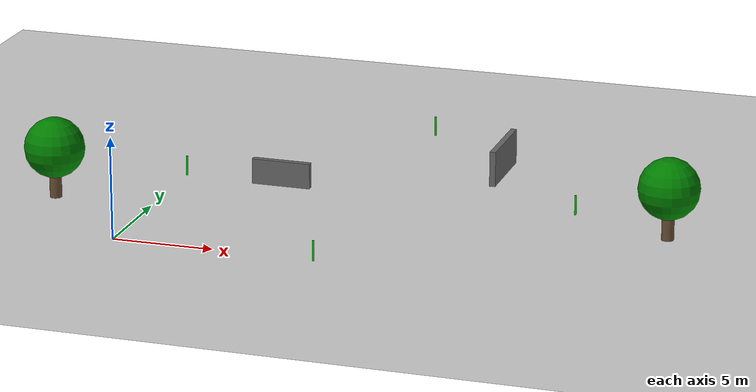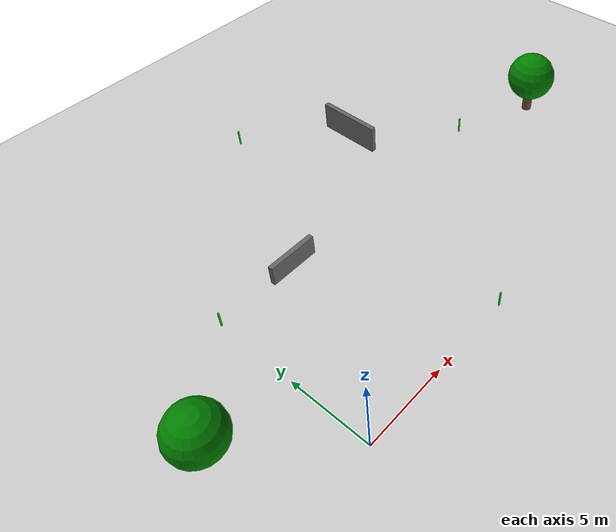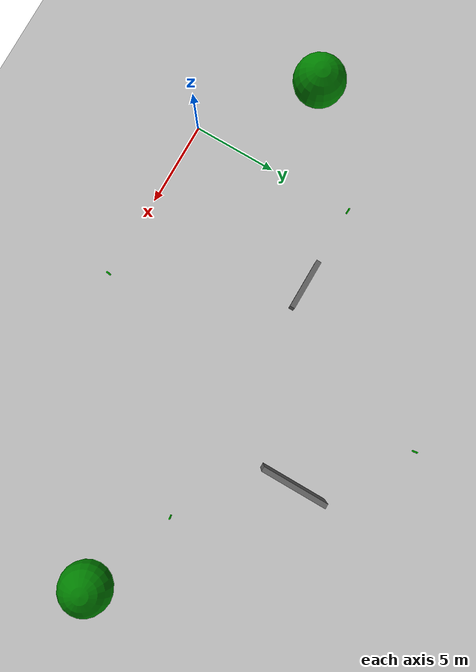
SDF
<sdf version="1.7">
 <world name="perimeter_mining_ground">
  <physics type="ode">
   <max_step_size>0.001</max_step_size>
   <real_time_factor>1.0</real_time_factor>
   <real_time_update_rate>1000.0</real_time_update_rate>
  </physics>
  <include><uri>model://sun</uri></include>
  <include><uri>model://ground_plane</uri></include>
  <model name="perimeter_marker_1">
   <static>1</static>
   <pose>10 0 0.5 0 0 0</pose>
   <link name="link">
    <collision name="collision">
     <geometry><cylinder><radius>0.05</radius><length>1.0</length></cylinder></geometry>
    </collision>
    <visual name="visual">
     <geometry><cylinder><radius>0.05</radius><length>1.0</length></cylinder></geometry>
     <material><ambient>0 0.8 0 1.0</ambient><diffuse>0 0.8 0 1.0</diffuse></material>
    </visual>
   </link>
  </model>
  <model name="perimeter_marker_2">
   <static>1</static>
   <pose>20 10 0.5 0 0 0</pose>
   <link name="link">
    <collision name="collision">
     <geometry><cylinder><radius>0.05</radius><length>1.0</length></cylinder></geometry>
    </collision>
    <visual name="visual">
     <geometry><cylinder><radius>0.05</radius><length>1.0</length></cylinder></geometry>
     <material><ambient>0 0.8 0 1.0</ambient><diffuse>0 0.8 0 1.0</diffuse></material>
    </visual>
   </link>
  </model>
  <model name="perimeter_marker_3">
   <static>1</static>
   <pose>10 20 0.5 0 0 0</pose>
   <link name="link">
    <collision name="collision">
     <geometry><cylinder><radius>0.05</radius><length>1.0</length></cylinder></geometry>
    </collision>
    <visual name="visual">
     <geometry><cylinder><radius>0.05</radius><length>1.0</length></cylinder></geometry>
     <material><ambient>0 0.8 0 1.0</ambient><diffuse>0 0.8 0 1.0</diffuse></material>
    </visual>
   </link>
  </model>
  <model name="perimeter_marker_4">
   <static>1</static>
   <pose>0 10 0.5 0 0 0</pose>
   <link name="link">
    <collision name="collision">
     <geometry><cylinder><radius>0.05</radius><length>1.0</length></cylinder></geometry>
    </collision>
    <visual name="visual">
     <geometry><cylinder><radius>0.05</radius><length>1.0</length></cylinder></geometry>
     <material><ambient>0 0.8 0 1.0</ambient><diffuse>0 0.8 0 1.0</diffuse></material>
    </visual>
   </link>
  </model>
  <model name="ruin_wall_1">
   <static>1</static>
   <pose>5 10 0.5 0 0 0</pose>
   <link name="link">
    <collision name="collision"><geometry><box><size>3.0 0.3 1.5</size></box></geometry></collision>
    <visual name="visual">
     <geometry><box><size>3.0 0.3 1.5</size></box></geometry>
     <material><ambient>0.3 0.3 0.3 1.0</ambient><diffuse>0.4 0.4 0.4 1.0</diffuse></material>
    </visual>
   </link>
  </model>
  <model name="ruin_wall_2">
   <static>1</static>
   <pose>15 15 0.75 0 0 1.57</pose>
   <link name="link">
    <collision name="collision"><geometry><box><size>4.0 0.3 2.0</size></box></geometry></collision>
    <visual name="visual">
     <geometry><box><size>4.0 0.3 2.0</size></box></geometry>
     <material><ambient>0.3 0.3 0.3 1.0</ambient><diffuse>0.4 0.4 0.4 1.0</diffuse></material>
    </visual>
   </link>
  </model>
  <model name="tree_1">
   <static>1</static>
   <pose>-5 5 0 0 0 0</pose>
   <link name="trunk">
    <inertial><mass>50</mass></inertial>
    <collision name="collision">
     <geometry><cylinder><radius>0.3</radius><length>3.0</length></cylinder></geometry>
    </collision>
    <visual name="visual">
     <geometry><cylinder><radius>0.3</radius><length>3.0</length></cylinder></geometry>
     <material><ambient>0.3 0.2 0.1 1.0</ambient><diffuse>0.4 0.3 0.2 1.0</diffuse></material>
    </visual>
   </link>
   <link name="leaves">
    <pose>0 0 2.5 0 0 0</pose>
    <collision name="collision"><geometry><sphere><radius>1.5</radius></sphere></geometry></collision>
    <visual name="visual">
     <geometry><sphere><radius>1.5</radius></sphere></geometry>
     <material><ambient>0.0 0.4 0.0 1.0</ambient><diffuse>0.0 0.5 0.0 1.0</diffuse></material>
    </visual>
   </link>
  </model>
  <model name="tree_2">
   <static>1</static>
   <pose>25 8 0 0 0 0</pose>
   <link name="trunk">
    <inertial><mass>50</mass></inertial>
    <collision name="collision">
     <geometry><cylinder><radius>0.3</radius><length>3.0</length></cylinder></geometry>
    </collision>
    <visual name="visual">
     <geometry><cylinder><radius>0.3</radius><length>3.0</length></cylinder></geometry>
     <material><ambient>0.3 0.2 0.1 1.0</ambient><diffuse>0.4 0.3 0.2 1.0</diffuse></material>
    </visual>
   </link>
   <link name="leaves">
    <pose>0 0 2.5 0 0 0</pose>
    <collision name="collision"><geometry><sphere><radius>1.5</radius></sphere></geometry></collision>
    <visual name="visual">
     <geometry><sphere><radius>1.5</radius></sphere></geometry>
     <material><ambient>0.0 0.4 0.0 1.0</ambient><diffuse>0.0 0.5 0.0 1.0</diffuse></material>
    </visual>
   </link>
  </model>
  <sky><clouds><speed>5</speed></clouds></sky>
  <fog type="custom"><linear_start>50</linear_start><linear_end>200</linear_end></fog>
 </world>
</sdf>
